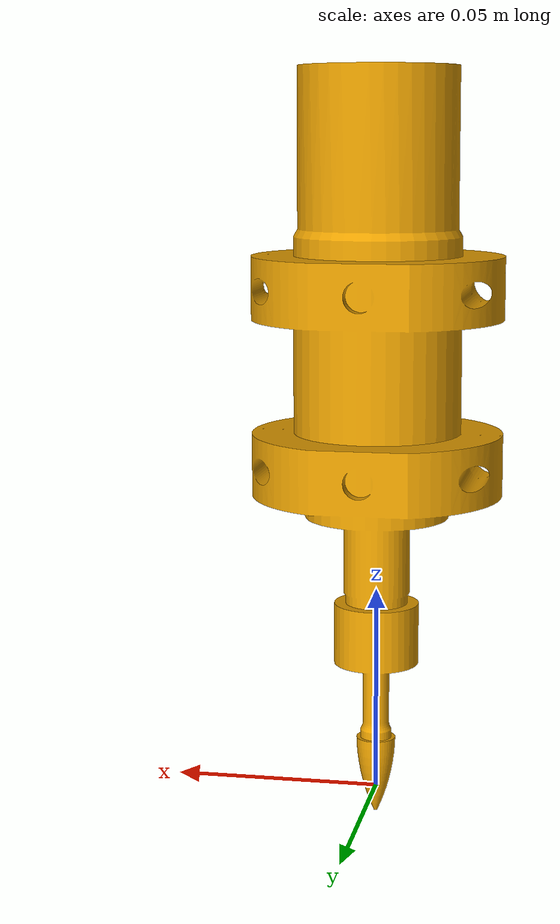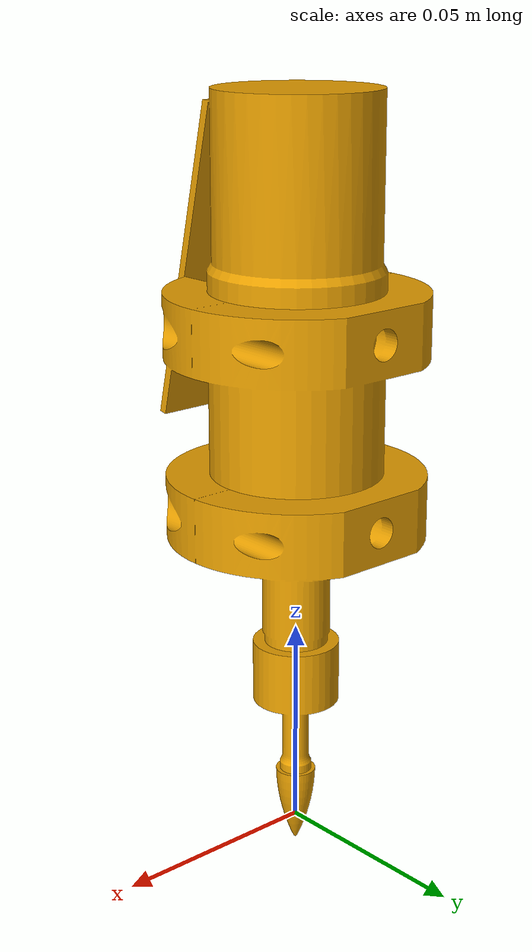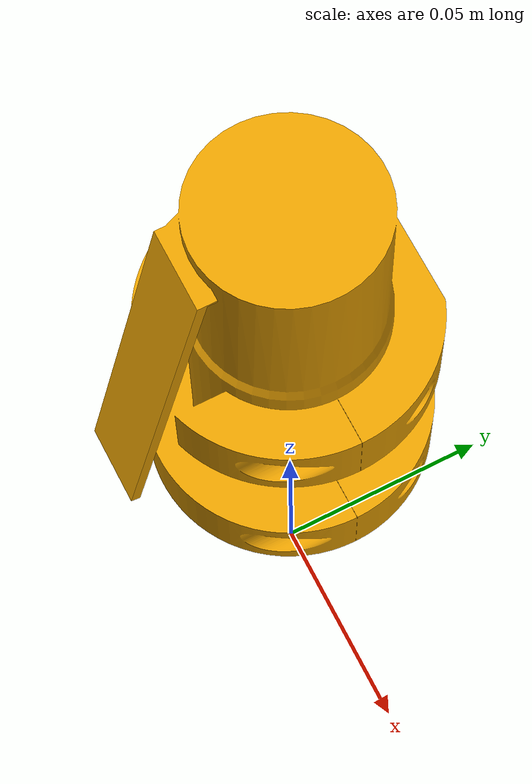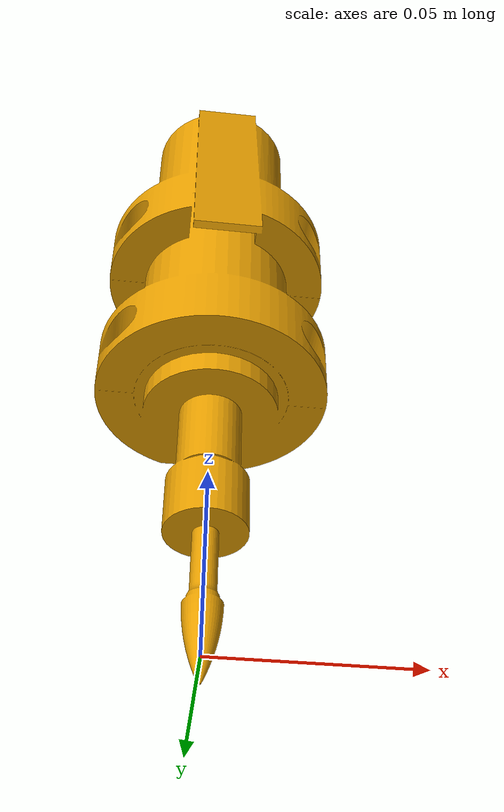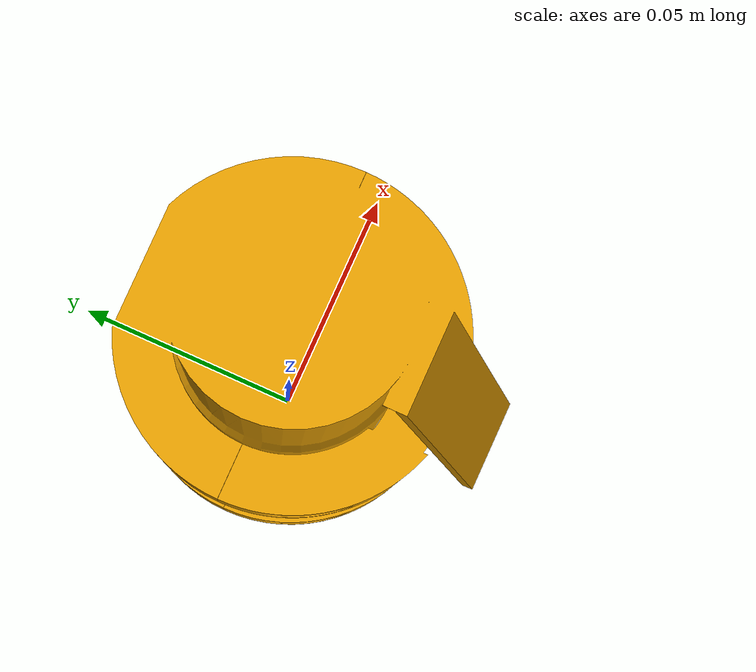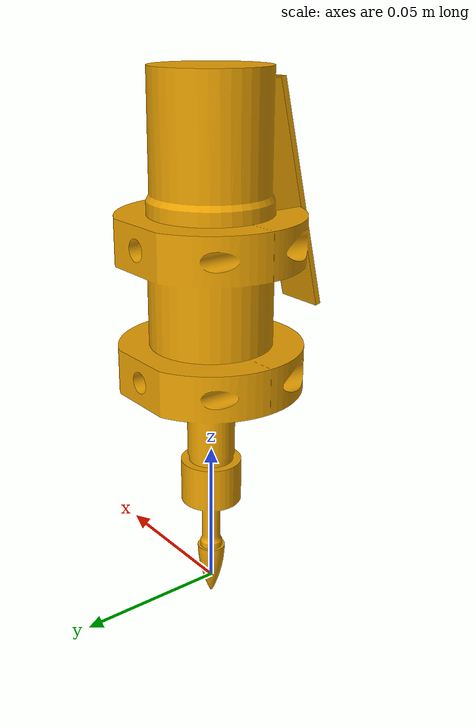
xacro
<?xml version="1.0"?>
<robot xmlns:xacro="http://ros.org/wiki/xacro" name="grinder">
    <link name="grinder_frame">
      <visual>
       <origin xyz="0 0 0" rpy="0 3.14159 0" />
        <geometry>
          <mesh filename="package://myworkcell_core/meshes/grinder_visual.dae" />
        </geometry>
      </visual>
      <collision>
        <origin xyz="0 0 0" rpy="0 3.14159 0" />
        <geometry>
          <mesh filename="package://myworkcell_core/meshes/grinder_collision.dae" />
        </geometry>
      </collision>
    </link>
 </robot>
